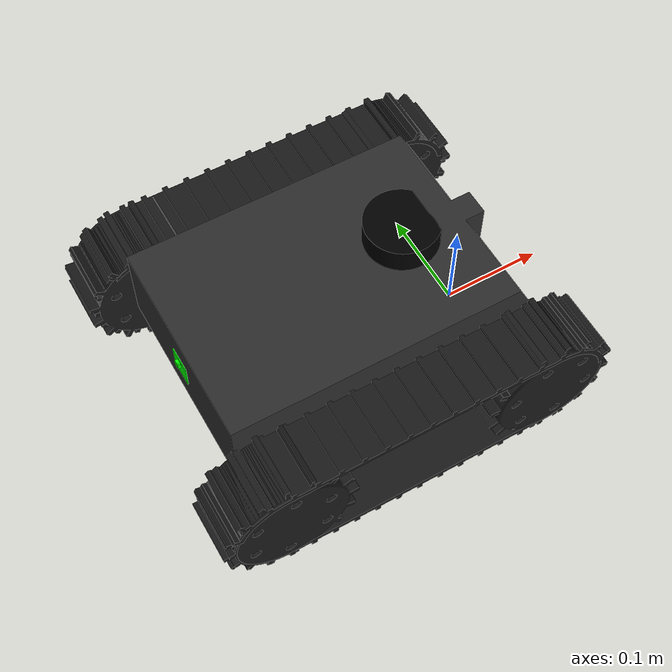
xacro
<?xml version="1.0"?>
<robot xmlns:xacro="http://ros.org/wiki/xacro" name="tank">
    <xacro:include filename="macros.xacro"/>
    <xacro:include filename="chassis.xacro"/>
    <xacro:include filename="camera.xacro"/>
    <xacro:include filename="controller.xacro"/>
    <xacro:include filename="lidar.xacro"/>
    <xacro:include filename="tracks.xacro"/>
    <xacro:include filename="wheels.xacro"/>
</robot>

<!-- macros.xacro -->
<robot xmlns:xacro="http://ros.org/wiki/xacro" name="macros">
    <xacro:macro name="wheel" params="name x1 y1 z1
                                      ixx ixy ixz iyy iyz izz
                                      x2 y2 z2 roll2 pitch2 yaw2">
        <link name="${name}">
            <inertial>
                <origin xyz="${x1} ${y1} ${z1}" rpy="0 0 0"/>
                <mass value="0.700837"/>
                <inertia ixx="${ixx}" ixy="${ixy}" ixz="${ixz}" iyy="${iyy}" iyz="${iyz}" izz="${izz}"/>
            </inertial>
            <visual>
                <origin xyz="${x2} ${y2} ${z2}" rpy="${roll2} ${pitch2} ${yaw2}"/>
                <geometry>
                    <mesh filename="package://tank/meshes/tank/wheel.stl"/>
                </geometry>
                <material name="${name}_material">
                    <color rgba="0.1 0.1 0.1 1.0"/>
                </material>
            </visual>
            <collision>
                <origin xyz="${x2} ${y2} ${z2}" rpy="${roll2} ${pitch2} ${yaw2}"/>
                <geometry>
                    <mesh filename="package://tank/meshes/tank/wheel.stl"/>
                </geometry>
            </collision>
        </link>
    </xacro:macro>

    <xacro:macro name="track" params="name x1 y1 z1
                                      ixx ixy ixz iyy iyz izz
                                      x2 y2 z2 roll2 pitch2 yaw2">
        <link name="${name}">
            <inertial>
                <origin xyz="${x1} ${y1} ${z1}" rpy="0 0 0"/>
                <mass value="2.4385"/>
                <inertia ixx="${ixx}" ixy="${ixy}" ixz="${ixz}" iyy="${iyy}" iyz="${iyz}" izz="${izz}"/>
            </inertial>
            <visual>
                <origin xyz="${x2} ${y2} ${z2}" rpy="${roll2} ${pitch2} ${yaw2}"/>
                <geometry>
                    <mesh filename="package://tank/meshes/tank/track.stl"/>
                </geometry>
                <material name="${name}_material">
                    <color rgba="0.1 0.1 0.1 1.0"/>
                </material>
            </visual>
            <collision>
                <origin xyz="${x2} ${y2} ${z2}" rpy="${roll2} ${pitch2} ${yaw2}"/>
                <geometry>
                    <mesh filename="package://tank/meshes/tank/track.stl"/>
                </geometry>
            </collision>
        </link>
    </xacro:macro>

    <xacro:macro name="link" params="name x1 y1 z1 mass
                                     ixx ixy ixz iyy iyz izz
                                     x2 y2 z2 roll2 pitch2 yaw2
                                     r g b a">
        <link name="${name}">
            <inertial>
                <origin xyz="${x1} ${y1} ${z1}" rpy="0 0 0"/>
                <mass value="${mass}"/>
                <inertia ixx="${ixx}" ixy="${ixy}" ixz="${ixz}" iyy="${iyy}" iyz="${iyz}" izz="${izz}"/>
            </inertial>
            <visual>
                <origin xyz="${x2} ${y2} ${z2}" rpy="${roll2} ${pitch2} ${yaw2}"/>
                <geometry>
                    <xacro:if value="${name == 'base_link'}">
                        <mesh filename="package://tank/meshes/tank/chassis.stl"/>
                    </xacro:if>
                    <xacro:if value="${name == 'camera' or name == 'lidar'}">
                        <mesh filename="package://tank/meshes/tank/${name}.stl"/>
                    </xacro:if>
                </geometry>
                <material name="${name}_material">
                    <color rgba="${r} ${g} ${b} ${a}"/>
                </material>
            </visual>
            <collision>
                <origin xyz="${x2} ${y2} ${z2}" rpy="${roll2} ${pitch2} ${yaw2}"/>
                <geometry>
                    <xacro:if value="${name == 'base_link'}">
                        <mesh filename="package://tank/meshes/tank/chassis.stl"/>
                    </xacro:if>
                    <xacro:if value="${name == 'camera' or name == 'lidar'}">
                        <mesh filename="package://tank/meshes/tank/${name}.stl"/>
                    </xacro:if>
                </geometry>
            </collision>
        </link>
    </xacro:macro>

    <xacro:macro name="joint" params="name type x1 y1 z1 roll pitch yaw
                                      parent_link child_link
                                      effort:=10 velocity:=10 lower:=0 upper:=0">
        <joint name="${name}" type="${type}">
            <dynamics damping="0.1"/>
            <origin xyz="${x1} ${y1} ${z1}" rpy="${roll} ${pitch} ${yaw}"/>
            <parent link="${parent_link}"/>
            <child link="${child_link}"/>
            <axis xyz="0 0 1"/>
            <xacro:if value="${type == 'revolute' or type == 'prismatic'}">
                <limit effort="${effort}" velocity="${velocity}" lower="${lower}" upper="${upper}"/>
            </xacro:if>
            <xacro:if value="${type == 'continuous'}">
                <limit effort="${effort}" velocity="${velocity}"/>
            </xacro:if>
        </joint>
    </xacro:macro>

    <xacro:macro name="transmission" params="joint_name actuator_name">
        <transmission name="${joint_name}_transmission">
            <type>transmission_interface/SimpleTransmission</type>
            <actuator name="${actuator_name}">
                <hardwareInterface>hardware_interface/VelocityJointInterface</hardwareInterface>
                <mechanicalReduction>1</mechanicalReduction>
            </actuator>
            <joint name="${joint_name}">
                <hardwareInterface>hardware_interface/VelocityJointInterface</hardwareInterface>
            </joint>
        </transmission>
    </xacro:macro>
</robot>

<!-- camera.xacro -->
<robot xmlns:xacro="http://ros.org/wiki/xacro">
    <xacro:link name="camera"
                x1="8.63869e-19" y1="-0.000645903" z1="-0.00126913" mass="0.00147364"
                ixx="7.56624e-08" ixy="-1.5923e-41" ixz="1.64229e-39" iyy="7.05662e-08" iyz="-2.12341e-09" izz="1.43344e-07"
                x2="1.95156e-18" y2="0" z2="0" roll2="3.14159" pitch2="-7.4988e-33" yaw2="0"
                r="0" g="1.0" b="0" a="1.0"/>

    <xacro:joint name="camera_pose" type="fixed"
                 x1="-0.2815" y1="0.001" z1="0.0995" roll="-1.5708" pitch="-6.12323e-17" yaw="-1.5708"
                 parent_link="base_link" child_link="camera"/>

    <gazebo reference="camera">
        <material>Gazebo/Green</material>
    </gazebo>

    <link name="camera_optical"/>

    <gazebo reference="camera_optical">
        <sensor name="camera" type="camera">
            <update_rate>30.0</update_rate>
            <camera>
                <horizontal_fov>1.3962634</horizontal_fov>
                <image>
                    <width>4000</width>
                    <height>3000</height>
                    <format>R8G8B8</format>
                </image>
                <clip>
                    <near>0.02</near>
                    <far>300</far>
                </clip>
                <noise>
                    <type>gaussian</type>
                    <mean>0.0</mean>
                    <stddev>0.007</stddev>
                </noise>
            </camera>
            <plugin name="camera_controller" filename="libgazebo_ros_camera.so">
                <alwaysOn>true</alwaysOn>
                <updateRate>0.0</updateRate>
                <cameraName>camera_pi</cameraName>
                <imageTopicName>image_raw</imageTopicName>
                <cameraInfoTopicName>camera_info</cameraInfoTopicName>
                <frameName>camera_optical</frameName>
                <hackBaseline>0.07</hackBaseline>
                <distortionK1>0.0</distortionK1>
                <distortionK2>0.0</distortionK2>
                <distortionK3>0.0</distortionK3>
                <distortionT1>0.0</distortionT1>
                <distortionT2>0.0</distortionT2>
            </plugin>
        </sensor>
    </gazebo>

    <xacro:joint name="camera_optical_pose" type="fixed"
                 x1="0" y1="0" z1="0" roll="-1.5708" pitch="1.5708" yaw="-1.5708"
                 parent_link="camera" child_link="camera_optical"/>
</robot>
